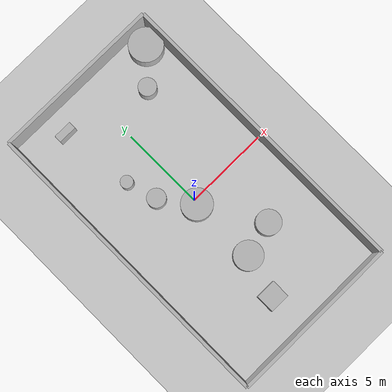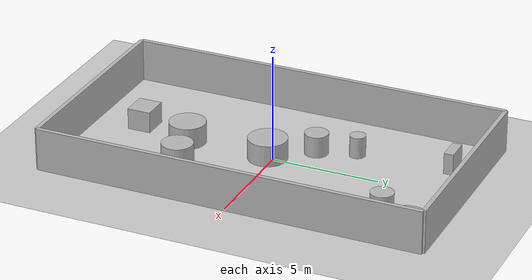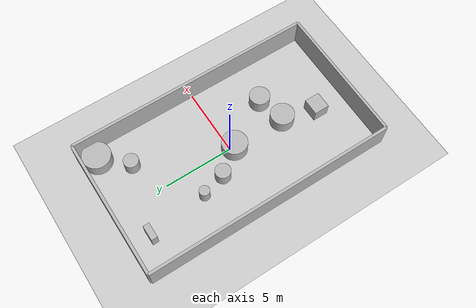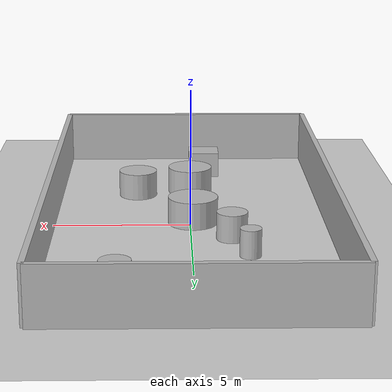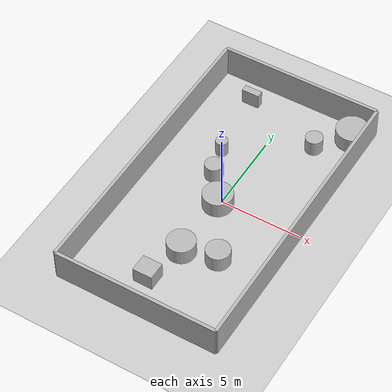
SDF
<?xml version="1.0"?>
<sdf version="1.6">
  <world name="env_88">

    <include><uri>model://ground_plane</uri></include>
    <include><uri>model://sun</uri></include>

    <!-- WALLS -->
    <model name="wall_north"><static>true</static><pose>0 9.027152443072417 1 0 0 0</pose>
      <link name="link"><collision name="collision">
        <geometry><box><size>10.057732093144455 0.2 2</size></box></geometry>
      </collision><visual name="visual">
        <geometry><box><size>10.057732093144455 0.2 2</size></box></geometry>
      </visual></link>
    </model>

    <model name="wall_south"><static>true</static><pose>0 -9.027152443072417 1 0 0 0</pose>
      <link name="link"><collision name="collision">
        <geometry><box><size>10.057732093144455 0.2 2</size></box></geometry>
      </collision><visual name="visual">
        <geometry><box><size>10.057732093144455 0.2 2</size></box></geometry>
      </visual></link>
    </model>

    <model name="wall_east"><static>true</static><pose>5.028866046572228 0 1 0 0 1.57</pose>
      <link name="link"><collision name="collision">
        <geometry><box><size>18.054304886144834 0.2 2</size></box></geometry>
      </collision><visual name="visual">
        <geometry><box><size>18.054304886144834 0.2 2</size></box></geometry>
      </visual></link>
    </model>

    <model name="wall_west"><static>true</static><pose>-5.028866046572228 0 1 0 0 1.57</pose>
      <link name="link"><collision name="collision">
        <geometry><box><size>18.054304886144834 0.2 2</size></box></geometry>
      </collision><visual name="visual">
        <geometry><box><size>18.054304886144834 0.2 2</size></box></geometry>
      </visual></link>
    </model>

    <!-- SENSOR -->

    <model name="lidar_sensor">
      <static>true</static>
      <pose>4.033609400439548 0.30579456351850354 0.4 0 0 0</pose>
      <link name="link">
        <sensor name="lidar" type="ray">
          <pose>0 0 0 0 0 0</pose>
          <visualize>true</visualize>
          <always_on>true</always_on>
          <update_rate>10</update_rate>
          <ray>
            <scan><horizontal>
              <samples>240</samples>
              <resolution>1</resolution>
              <min_angle>-3.14159</min_angle>
              <max_angle>3.14159</max_angle>
            </horizontal></scan>
            <range><min>0.15</min><max>20.0</max><resolution>0.01</resolution></range>
          </ray>
          <plugin name="lidar_plugin" filename="liblidar_plugin.so"/>
        </sensor>
      </link>
    </model>

    <!-- OBSTACLES -->

    <model name="obstacle_0">
      <static>true</static>
      <pose>-1.9526377563882922 3.2384768171139253 0.5 0 0 0</pose>
      <link name="link">
        <collision name="collision">
          <geometry><cylinder><radius>0.37</radius><length>1.0</length></cylinder></geometry>
        </collision>
        <visual name="visual">
          <geometry><cylinder><radius>0.37</radius><length>1.0</length></cylinder></geometry>
        </visual>
      </link>
    </model>

    <model name="obstacle_1">
      <static>true</static>
      <pose>-2.441318067152814 7.549156513201702 0.5 0 0 0</pose>
      <link name="link">
        <collision name="collision">
          <geometry><box><size>1.11 0.44 1.0</size></box></geometry>
        </collision>
        <visual name="visual">
          <geometry><box><size>1.11 0.44 1.0</size></box></geometry>
        </visual>
      </link>
    </model>

    <model name="obstacle_2">
      <static>true</static>
      <pose>2.503129066645587 6.190944277064405 0.5 0 0 0</pose>
      <link name="link">
        <collision name="collision">
          <geometry><cylinder><radius>0.53</radius><length>1.0</length></cylinder></geometry>
        </collision>
        <visual name="visual">
          <geometry><cylinder><radius>0.53</radius><length>1.0</length></cylinder></geometry>
        </visual>
      </link>
    </model>

    <model name="obstacle_3">
      <static>true</static>
      <pose>1.9737423058631816 -3.727735427502001 0.5 0 0 0</pose>
      <link name="link">
        <collision name="collision">
          <geometry><cylinder><radius>0.73</radius><length>1.0</length></cylinder></geometry>
        </collision>
        <visual name="visual">
          <geometry><cylinder><radius>0.73</radius><length>1.0</length></cylinder></geometry>
        </visual>
      </link>
    </model>

    <model name="obstacle_4">
      <static>true</static>
      <pose>-0.09524537158484048 -0.29843156509985747 0.5 0 0 0</pose>
      <link name="link">
        <collision name="collision">
          <geometry><cylinder><radius>0.91</radius><length>1.0</length></cylinder></geometry>
        </collision>
        <visual name="visual">
          <geometry><cylinder><radius>0.91</radius><length>1.0</length></cylinder></geometry>
        </visual>
      </link>
    </model>

    <model name="obstacle_5">
      <static>true</static>
      <pose>-1.4258486536517356 1.4792756120011141 0.5 0 0 0</pose>
      <link name="link">
        <collision name="collision">
          <geometry><cylinder><radius>0.55</radius><length>1.0</length></cylinder></geometry>
        </collision>
        <visual name="visual">
          <geometry><cylinder><radius>0.55</radius><length>1.0</length></cylinder></geometry>
        </visual>
      </link>
    </model>

    <model name="obstacle_6">
      <static>true</static>
      <pose>-0.6874211015936589 -6.695369901695009 0.5 0 0 0</pose>
      <link name="link">
        <collision name="collision">
          <geometry><box><size>1.21 1.1 1.0</size></box></geometry>
        </collision>
        <visual name="visual">
          <geometry><box><size>1.21 1.1 1.0</size></box></geometry>
        </visual>
      </link>
    </model>

    <model name="obstacle_7">
      <static>true</static>
      <pose>4.090943372983348 7.93017967769584 0.5 0 0 0</pose>
      <link name="link">
        <collision name="collision">
          <geometry><cylinder><radius>1.0</radius><length>1.0</length></cylinder></geometry>
        </collision>
        <visual name="visual">
          <geometry><cylinder><radius>1.0</radius><length>1.0</length></cylinder></geometry>
        </visual>
      </link>
    </model>

    <model name="obstacle_8">
      <static>true</static>
      <pose>-0.07178181184962806 -4.229403360979892 0.5 0 0 0</pose>
      <link name="link">
        <collision name="collision">
          <geometry><cylinder><radius>0.85</radius><length>1.0</length></cylinder></geometry>
        </collision>
        <visual name="visual">
          <geometry><cylinder><radius>0.85</radius><length>1.0</length></cylinder></geometry>
        </visual>
      </link>
    </model>

  </world>
</sdf>
